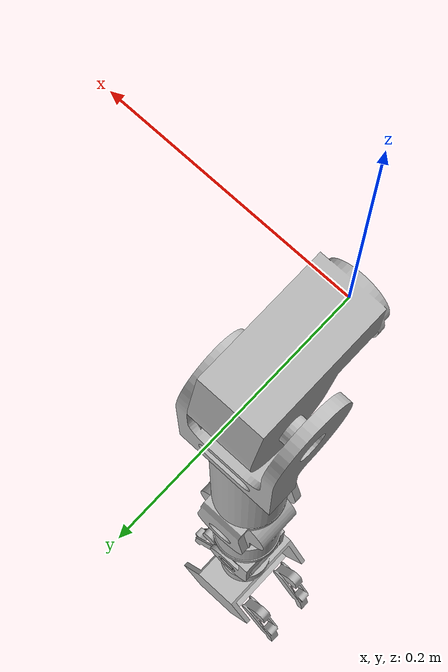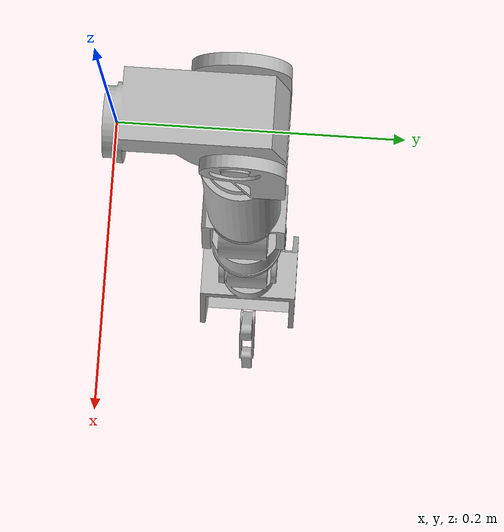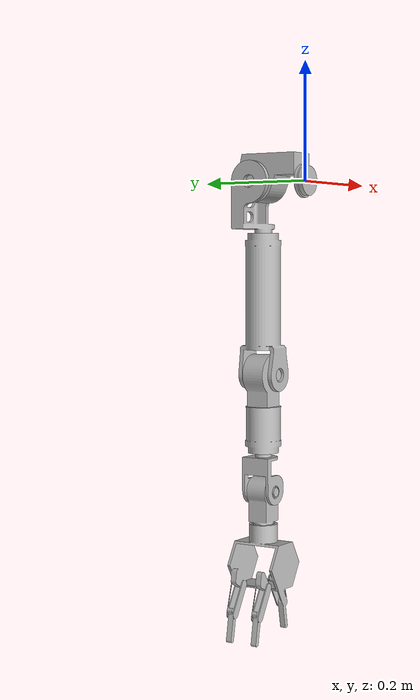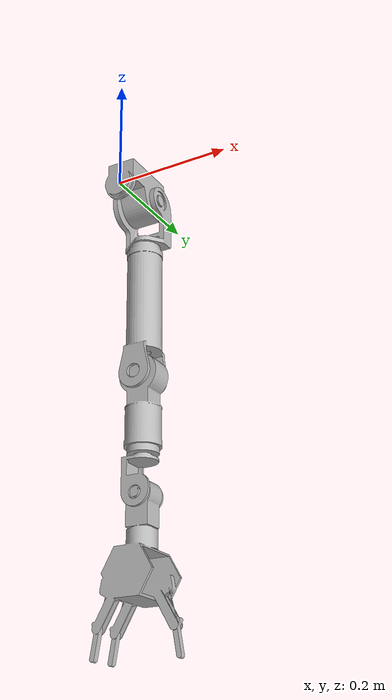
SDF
<?xml version='1.0'?>
<sdf version='1.6'>
  <model name='teo_leftArm'>

    <link name='FrontalLeftShoulder_link'>
      <pose>0 0 0 0 -0 0</pose>
      <inertial>
        <pose>-0.002272 0.056186 0.008165 0 -0 0</pose>
        <mass>2</mass>
        <inertia>
          <ixx>0.004226791</ixx>
          <ixy>-0.0000855</ixy>
          <ixz>-0.0000117</ixz>
          <iyy>0.00212734</iyy>
          <iyz>0.000280493</iyz>
          <izz>0.00409322</izz>
        </inertia>
      </inertial>
      <visual name='FrontalLeftShoulder_visual'>
        <geometry>
          <mesh>
            <uri>model://teo/meshes/visual/FrontalLeftShoulder.dae</uri>
          </mesh>
        </geometry>
      </visual>
    </link>

    <joint name='FrontalLeftShoulder' type='revolute'>
      <parent>teo_trunk::FrontalWaist_link</parent>
      <child>teo_leftArm::FrontalLeftShoulder_link</child>
      <axis>
        <xyz>0 1 0</xyz>
        <limit>
          <lower>-1.69</lower>
          <upper>1.98</upper>
        </limit>
      </axis>
    </joint>

    <link name='SagittalLeftShoulder_link'>
      <pose>0 0.084 0 0 -0 0</pose>
      <inertial>
        <pose>-0.008047 0.004937 -0.027619 0 -0 0</pose>
        <mass>1</mass>
        <inertia>
          <ixx>0.001610921</ixx>
          <ixy>0.000069</ixy>
          <ixz>-0.000214885</ixz>
          <iyy>0.002187768</iyy>
          <iyz>-0.000163004</iyz>
          <izz>0.001173531</izz>
        </inertia>
      </inertial>
      <visual name='SagittalLeftShoulder_visual'>
        <geometry>
          <mesh>
            <uri>model://teo/meshes/visual/SagittalLeftShoulder.dae</uri>
          </mesh>
        </geometry>
      </visual>
    </link>

    <joint name='SagittalLeftShoulder' type='revolute'>
      <parent>teo_leftArm::FrontalLeftShoulder_link</parent>
      <child>teo_leftArm::SagittalLeftShoulder_link</child>
      <axis>
        <xyz>1 0 0</xyz>
        <limit>
          <lower>-0.42</lower>
          <upper>1.34</upper>
        </limit>
      </axis>
    </joint>

    <link name='AxialLeftShoulder_link'>
      <pose>0 0.084 -0.329 0 -0 0</pose>
      <inertial>
        <pose>-0.000172 0.000249 0.100649 0 -0 0</pose>
        <mass>1</mass>
        <inertia>
          <ixx>0.006925108</ixx>
          <ixy>0</ixy>
          <ixz>0</ixz>
          <iyy>0.006741634</iyy>
          <iyz>0.0000397</iyz>
          <izz>0.000611796</izz>
        </inertia>
      </inertial>
      <visual name='AxialLeftShoulder_visual'>
        <geometry>
          <mesh>
            <uri>model://teo/meshes/visual/AxialLeftShoulder.dae</uri>
          </mesh>
        </geometry>
      </visual>
    </link>

    <joint name='AxialLeftShoulder' type='revolute'>
      <parent>teo_leftArm::SagittalLeftShoulder_link</parent>
      <child>teo_leftArm::AxialLeftShoulder_link</child>
      <axis>
        <xyz>0 0 1</xyz>
        <limit>
          <lower>-0.9</lower>
          <upper>1.47</upper>
        </limit>
      </axis>
    </joint>

    <link name='FrontalLeftElbow_link'>
      <pose>0 0.084 -0.329 0 -0 0</pose>
      <inertial>
        <pose>0.000287 -0.000116 -0.053185 0 -0 0</pose>
        <mass>1</mass>
        <inertia>
          <ixx>0.002590029</ixx>
          <ixy>0</ixy>
          <ixz>0</ixz>
          <iyy>0.00262307</iyy>
          <iyz>0</iyz>
          <izz>0.000446024</izz>
        </inertia>
      </inertial>
      <visual name='FrontalLeftElbow_visual'>
        <geometry>
          <mesh>
            <uri>model://teo/meshes/visual/FrontalLeftElbow.dae</uri>
          </mesh>
        </geometry>
      </visual>
    </link>

    <joint name='FrontalLeftElbow' type='revolute'>
      <parent>teo_leftArm::AxialLeftShoulder_link</parent>
      <child>teo_leftArm::FrontalLeftElbow_link</child>
      <axis>
        <xyz>0 1 0</xyz>
        <limit>
          <lower>-1.76</lower>
          <upper>1.69</upper>
        </limit>
      </axis>
    </joint>

    <link name='AxialLeftWrist_link'>
      <pose>0 0.084 -0.531 0 -0 0</pose>
      <inertial>
        <pose>-0.001151 0.000603 0.02464 0 -0 0</pose>
        <mass>0.63149</mass>
        <inertia>
          <ixx>0.000701463</ixx>
          <ixy>-0.0000105</ixy>
          <ixz>-0.0000109</ixz>
          <iyy>0.000612806</iyy>
          <iyz>0.0000115</iyz>
          <izz>0.000326949</izz>
        </inertia>
      </inertial>
      <visual name='AxialLeftWrist_visual'>
        <geometry>
          <mesh>
            <uri>model://teo/meshes/visual/AxialLeftWrist.dae</uri>
          </mesh>
        </geometry>
      </visual>
    </link>

    <joint name='AxialLeftWrist' type='revolute'>
      <parent>teo_leftArm::FrontalLeftElbow_link</parent>
      <child>teo_leftArm::AxialLeftWrist_link</child>
      <axis>
        <xyz>0 0 1</xyz>
        <limit>
          <lower>-1.77</lower>
          <upper>1.33</upper>
        </limit>
      </axis>
    </joint>

    <link name='FrontalLeftWrist_link'>
      <pose>0 0.084 -0.531 0 -0 0</pose>
      <inertial>
        <pose>-0.002314 0.00007 -0.108635 0 -0 0</pose>
        <mass>1.17</mass>
        <inertia>
          <ixx>0.005330647</ixx>
          <ixy>0.000000128</ixy>
          <ixz>0.000100487</ixz>
          <iyy>0.005345282</iyy>
          <iyz>-0.00000807</iyz>
          <izz>0.000882489</izz>
        </inertia>
      </inertial>
      <visual name='FrontalLeftWrist_visual'>
        <geometry>
          <mesh>
            <uri>model://teo/meshes/visual/FrontalLeftWrist.dae</uri>
          </mesh>
        </geometry>
      </visual>
    </link>

    <joint name='FrontalLeftWrist' type='revolute'>
      <parent>teo_leftArm::AxialLeftWrist_link</parent>
      <child>teo_leftArm::FrontalLeftWrist_link</child>
      <axis>
        <xyz>0 1 0</xyz>
        <limit>
          <lower>-1.98</lower>
          <upper>1.07</upper>
        </limit>
      </axis>
    </joint>

    <plugin name='controlboard_leftArm' filename='libgazebo_yarp_controlboard.so'>
      <yarpConfigurationFile>model://teo/conf/gazebo_teo_leftArm.ini</yarpConfigurationFile>
    </plugin>

  </model>
</sdf>
